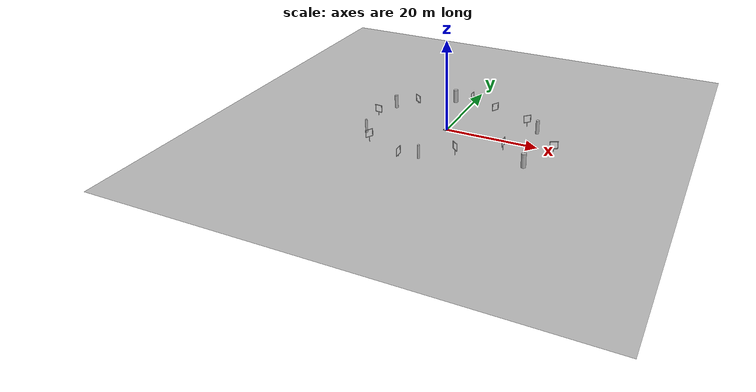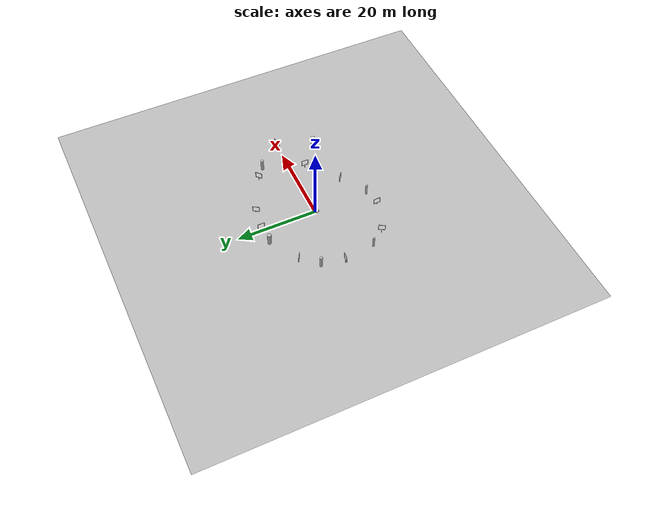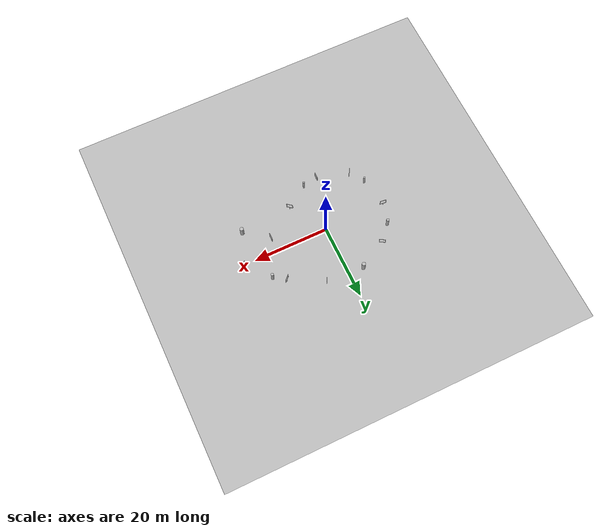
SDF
<?xml version="1.0"?>
<sdf version="1.5">
    <world name="default">
        <include>
            <uri>model://sun</uri>
        </include>

        <include>
            <uri>model://ground_my</uri>
        </include>

        <include>
            <uri>model://road</uri>
            <static>true</static>
            <pose>0 0 0 0 0 0</pose>
        </include>

        <include>
            <name>1cyl</name>
            <uri>model://cylinder_1</uri>
            <static>true</static>
            <pose>20 -8.4 0 0 0 0</pose>
        </include>

        <include>
            <name>2cyl</name>
            <uri>model://cylinder_1</uri>
            <static>true</static>
            <pose>-4 13.7 0 0 0 0</pose>
        </include>

        <include>
            <name>3cyl</name>
            <uri>model://cylinder_0.5</uri>
            <static>true</static>
            <pose>-15 -8 0 0 0 0</pose>
        </include>

        <include>
            <name>4cyl</name>
            <uri>model://cylinder_0.5</uri>
            <static>true</static>
            <pose>0 -13.6 0 0 0 0</pose>
        </include>

        <include>
            <name>5cyl</name>
            <uri>model://cylinder_0.75</uri>
            <static>true</static>
            <pose>18 6.3 0 0 0 0</pose>
        </include>

        <include>
            <name>6cyl</name>
            <uri>model://cylinder_0.75</uri>
            <static>true</static>
            <pose>-15 5.5 0 0 0 0</pose>
        </include>

        <include>
            <uri>model://frame</uri>
            <static>true</static>
            <pose>0 0 0 0 0 0</pose>
        </include>

        <include>
            <uri>model://platform</uri>
            <static>true</static>
            <pose>11 11 0 0 0 60</pose>
        </include>

     </world>
</sdf>

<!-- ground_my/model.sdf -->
<sdf version="1.5">
    <model name="ground">
        <static>true</static>
        <link name="link">
            <collision name="collision">
                <geometry>
                    <mesh>
                        <scale>1 1 1</scale>
                        <uri>model://ground_my/meshes/ground.dae</uri>
                    </mesh>
                    <surface>
                    <friction>
                        <ode>
                            <mu>1.2</mu>
                            <mu2>1.2</mu2>
                        </ode>
                    </friction>
                    </surface>
                </geometry>
            </collision>
            <visual name="visual">
              <geometry>
                <mesh>
                    <scale>1 1 1</scale>
                    <uri>model://ground_my/meshes/ground.dae</uri>
                </mesh>
              </geometry>
             </visual>
        </link>
    </model>
</sdf>

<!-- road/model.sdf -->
<sdf version='1.6'>
  <model name='road'>
    <pose frame=''>0 0 -0.1 -0 0</pose>
    <link name='task4'>
      <collision name='task4_Collision'>
        <geometry>
          <box>
            <size>1 1.5 0.1</size>
          </box>
        </geometry>
        <pose frame=''>0 0 0.2 0 -0 0</pose>
      </collision>
      <visual name='task4_Visual'>
        <pose frame=''>0 0 0.2 0 -0 0</pose>
        <geometry>
          <box>
            <size>1 1.5 0.1</size>
          </box>
        </geometry>
        <material>
          <script>
            <uri>file://media/materials/scripts/gazebo.material</uri>
            <name>Gazebo/Road</name>
          </script>
          <ambient>1 1 1 1</ambient>
        </material>
        <meta>
          <layer>0</layer>
        </meta>
      </visual>
      <pose frame=''>0 0 0 0 -0 0</pose>
    </link>
    <static>1</static>
  </model>
</sdf>

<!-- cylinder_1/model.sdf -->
<sdf version="1.5">
    <model name="cylinder_1">
        <static>true</static>
        <link name="link">
            <collision name="collision1">
                <pose>0 0 0 0 0 0</pose>
                <geometry>
                    <mesh>
                        <uri>model://cylinder_1/meshes/cylinder_1.stl</uri>
                    </mesh>
                </geometry>
            </collision>
            <visual name="visual1">

              <pose>0 0 0 0 0 0</pose>
              <geometry>
              <mesh>
                 <uri>model://cylinder_1/meshes/cylinder_1.dae</uri>
              </mesh>
              </geometry>

              <material>
                  <script>
                      <uri>model://cylinder_1/materials/scripts</uri>
                      <uri>model://cylinder_1/materials/textures</uri>
                      <name>cylinderMat/Diffuse</name>
                  </script>
              </material>
             </visual>

        </link>
    </model>
</sdf>

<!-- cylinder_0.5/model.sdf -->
<sdf version="1.5">
    <model name="cylinder_05">
        <static>true</static>
        <link name="link">
            <collision name="collision1">
                <pose>0 0 0 0 0 0</pose>
                <geometry>
                    <mesh>
                        <uri>model://cylinder_0.5/meshes/cylinder_0_5.stl</uri>
                    </mesh>
                </geometry>
            </collision>
            <visual name="visual1">

              <pose>0 0 0 0 0 0</pose>
              <geometry>
              <mesh>
                 <uri>model://cylinder_0.5/meshes/cylinder_0_5.dae</uri>
              </mesh>
              </geometry>

              <material>
                  <script>
                      <uri>model://cylinder_0.5/materials/scripts</uri>
                      <uri>model://cylinder_0.5/materials/textures</uri>
                      <name>cylinderMat/Diffuse</name>
                  </script>
              </material>
             </visual>

        </link>
    </model>
</sdf>

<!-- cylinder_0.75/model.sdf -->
<sdf version="1.5">
    <model name="cylinder_075">
        <static>true</static>
        <link name="link">
            <collision name="collision1">
                <pose>0 0 0 0 0 0</pose>
                <geometry>
                    <mesh>
                        <uri>model://cylinder_0.75/meshes/cylinder_0_75.stl</uri>
                    </mesh>
                </geometry>
            </collision>
            <visual name="visual1">

              <pose>0 0 0 0 0 0</pose>
              <geometry>
              <mesh>
                 <uri>model://cylinder_0.75/meshes/cylinder_0_75.dae</uri>
              </mesh>
              </geometry>

              <material>
                  <script>
                      <uri>model://cylinder_0.75/materials/scripts</uri>
                      <uri>model://cylinder_0.75/materials/textures</uri>
                      <name>cylinderMat/Diffuse</name>
                  </script>
              </material>
             </visual>

        </link>
    </model>
</sdf>

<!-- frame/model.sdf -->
<sdf version="1.5">
    <model name="frame">
        <static>true</static>
        <link name="link">
            <collision name="collision1">
                <pose>0 14.1 0 0 0 3.14</pose>
                <geometry>
                    <mesh>
                        <uri>model://frame/meshes/frame_2.stl</uri>
                    </mesh>
                </geometry>
            </collision>
            <visual name="visual1">

              <pose>0 14.1 0 0 0 3.14</pose>
              <geometry>
              <mesh>
                 <uri>model://frame/meshes/frame_2.dae</uri>
              </mesh>
              </geometry>

              <material>
                  <script>
                      <uri>model://frame/materials/scripts</uri>
                      <uri>model://frame/materials/textures</uri>
                      <name>frameMat/Diffuse</name>
                  </script>
              </material>
             </visual>

             <collision name="collision2">
                <pose>-11.5 9.5 0 0 0 23</pose>
                <geometry>
                    <mesh>
                        <uri>model://frame/meshes/frame_1_2.stl</uri>
                    </mesh>
                </geometry>
            </collision>
            <visual name="visual2">

              <pose>-11.5 9.5 0 0 0 23</pose>
              <geometry>
              <mesh>
                 <uri>model://frame/meshes/frame_1_2.dae</uri>
              </mesh>
              </geometry>

              <material>
                  <script>
                      <uri>model://frame/materials/scripts</uri>
                      <uri>model://frame/materials/textures</uri>
                      <name>frameMat/Diffuse</name>
                  </script>
              </material>
             </visual>

             <collision name="collision3">
                <pose>-4 -14.5 0 0 0 0</pose>
                <geometry>
                    <mesh>
                        <uri>model://frame/meshes/frame_1_2.stl</uri>
                    </mesh>
                </geometry>
            </collision>
            <visual name="visual3">

              <pose>-4 -14.5 0 0 0 0</pose>
              <geometry>
              <mesh>
                 <uri>model://frame/meshes/frame_1_2.dae</uri>
              </mesh>
              </geometry>

              <material>
                  <script>
                      <uri>model://frame/materials/scripts</uri>
                      <uri>model://frame/materials/textures</uri>
                      <name>frameMat/Diffuse</name>
                  </script>
              </material>
             </visual>

             <collision name="collision4">
                <pose>-12.3 -11.5 0 0 0 100</pose>
                <geometry>
                    <mesh>
                        <uri>model://frame/meshes/frame_2.stl</uri>
                    </mesh>
                </geometry>
            </collision>
            <visual name="visual4">

              <pose>-12.3 -11.5 0 0 0 100</pose>
              <geometry>
              <mesh>
                 <uri>model://frame/meshes/frame_2.dae</uri>
              </mesh>
              </geometry>

              <material>
                  <script>
                      <uri>model://frame/materials/scripts</uri>
                      <uri>model://frame/materials/textures</uri>
                      <name>frameMat/Diffuse</name>
                  </script>
              </material>
             </visual>

             <collision name="collision5">
                <pose>-16.5 0 0 0 0 80</pose>
                <geometry>
                    <mesh>
                        <uri>model://frame/meshes/frame_1_8.stl</uri>
                    </mesh>
                </geometry>
            </collision>
            <visual name="visual5">

              <pose>-16.5 0 0 0 0 80</pose>
              <geometry>
              <mesh>
                 <uri>model://frame/meshes/frame_1_8.dae</uri>
              </mesh>
              </geometry>

              <material>
                  <script>
                      <uri>model://frame/materials/scripts</uri>
                      <uri>model://frame/materials/textures</uri>
                      <name>frameMat/Diffuse</name>
                  </script>
              </material>
             </visual>

             <collision name="collision6">
                <pose>6 -9.4 0 0 0 70</pose>
                <geometry>
                    <mesh>
                        <uri>model://frame/meshes/frame_2.stl</uri>
                    </mesh>
                </geometry>
            </collision>
            <visual name="visual6">

              <pose>6 -9.4 0 0 0 70</pose>
              <geometry>
              <mesh>
                 <uri>model://frame/meshes/frame_2.dae</uri>
              </mesh>
              </geometry>

              <material>
                  <script>
                      <uri>model://frame/materials/scripts</uri>
                      <uri>model://frame/materials/textures</uri>
                      <name>frameMat/Diffuse</name>
                  </script>
              </material>
             </visual>

             <collision name="collision7">
                <pose>14 -3.5 0 0 0 0</pose>
                <geometry>
                    <mesh>
                        <uri>model://frame/meshes/frame_1_8.stl</uri>
                    </mesh>
                </geometry>
            </collision>
            <visual name="visual7">

              <pose>14 -3.5 0 0 0 0</pose>
              <geometry>
              <mesh>
                 <uri>model://frame/meshes/frame_1_8.dae</uri>
              </mesh>
              </geometry>

              <material>
                  <script>
                      <uri>model://frame/materials/scripts</uri>
                      <uri>model://frame/materials/textures</uri>
                      <name>frameMat/Diffuse</name>
                  </script>
              </material>
             </visual>

             <collision name="collision8">
                <pose>23.5 0 0 0 0 90</pose>
                <geometry>
                    <mesh>
                        <uri>model://frame/meshes/frame_1_5.stl</uri>
                    </mesh>
                </geometry>
            </collision>
            <visual name="visual8">

              <pose>23.5 0 0 0 0 90</pose>
              <geometry>
              <mesh>
                 <uri>model://frame/meshes/frame_1_5.dae</uri>
              </mesh>
              </geometry>

              <material>
                  <script>
                      <uri>model://frame/materials/scripts</uri>
                      <uri>model://frame/materials/textures</uri>
                      <name>frameMat/Diffuse</name>
                  </script>
              </material>
             </visual>

             <collision name="collision9">
                <pose>15 8.5 0 0 0 2.35</pose>
                <geometry>
                    <mesh>
                        <uri>model://frame/meshes/frame_1_8.stl</uri>
                    </mesh>
                </geometry>
            </collision>
            <visual name="visual9">

              <pose>15 8.5 0 0 0 2.35</pose>
              <geometry>
              <mesh>
                 <uri>model://frame/meshes/frame_1_8.dae</uri>
              </mesh>
              </geometry>

              <material>
                  <script>
                      <uri>model://frame/materials/scripts</uri>
                      <uri>model://frame/materials/textures</uri>
                      <name>frameMat/Diffuse</name>
                  </script>
              </material>
             </visual>

             <collision name="collision10">
                <pose>6 13 0 0 0 2.61</pose>
                <geometry>
                    <mesh>
                        <uri>model://frame/meshes/frame_1.stl</uri>
                    </mesh>
                </geometry>
            </collision>
            <visual name="visual10">

              <pose>6 13 0 0 0 2.61</pose>
              <geometry>
              <mesh>
                 <uri>model://frame/meshes/frame_1.dae</uri>
              </mesh>
              </geometry>

              <material>
                  <script>
                      <uri>model://frame/materials/scripts</uri>
                      <uri>model://frame/materials/textures</uri>
                      <name>frameMat/Diffuse</name>
                  </script>
              </material>
             </visual>

        </link>
    </model>
</sdf>

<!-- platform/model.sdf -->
<sdf version="1.6">
  <model name="platform">
    <static>false</static>
    <link name="dummy_upper"/>

    <joint name="world_joint" type="fixed">
      <parent>world</parent>
      <child>dummy_upper</child>
    </joint>
  </model>
</sdf>
